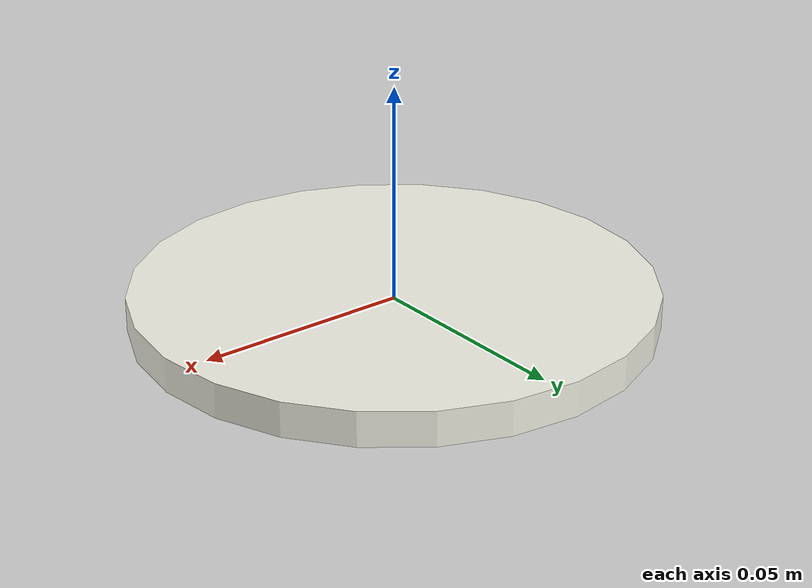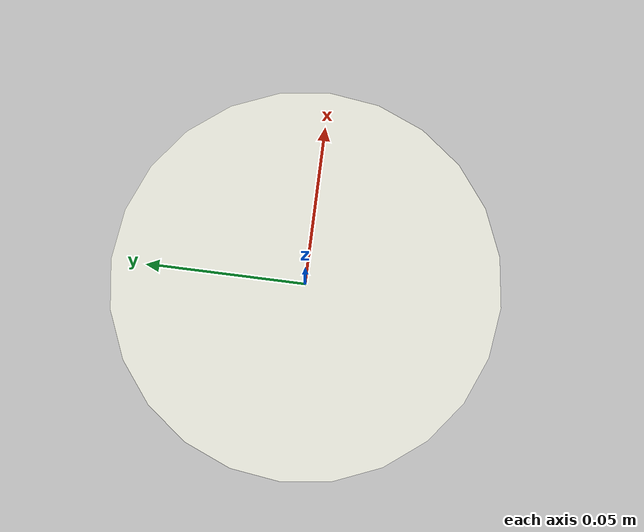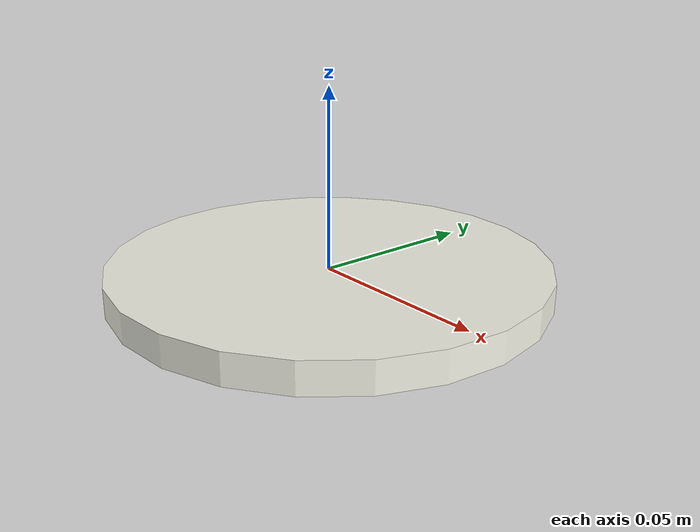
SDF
<?xml version="1.0" ?>
<sdf version="1.9">
  <model name="plate">
    <static>true</static>
    <link name="link">
      <collision name="collision">
        <geometry>
          <cylinder><radius>0.06</radius><length>0.008</length></cylinder>
        </geometry>
      </collision>
      <visual name="visual">
        <geometry>
          <cylinder><radius>0.06</radius><length>0.008</length></cylinder>
        </geometry>
        <material>
          <ambient>0.9 0.9 0.85 1</ambient>
          <diffuse>0.95 0.95 0.9 1</diffuse>
        </material>
      </visual>
    </link>
  </model>
</sdf>
